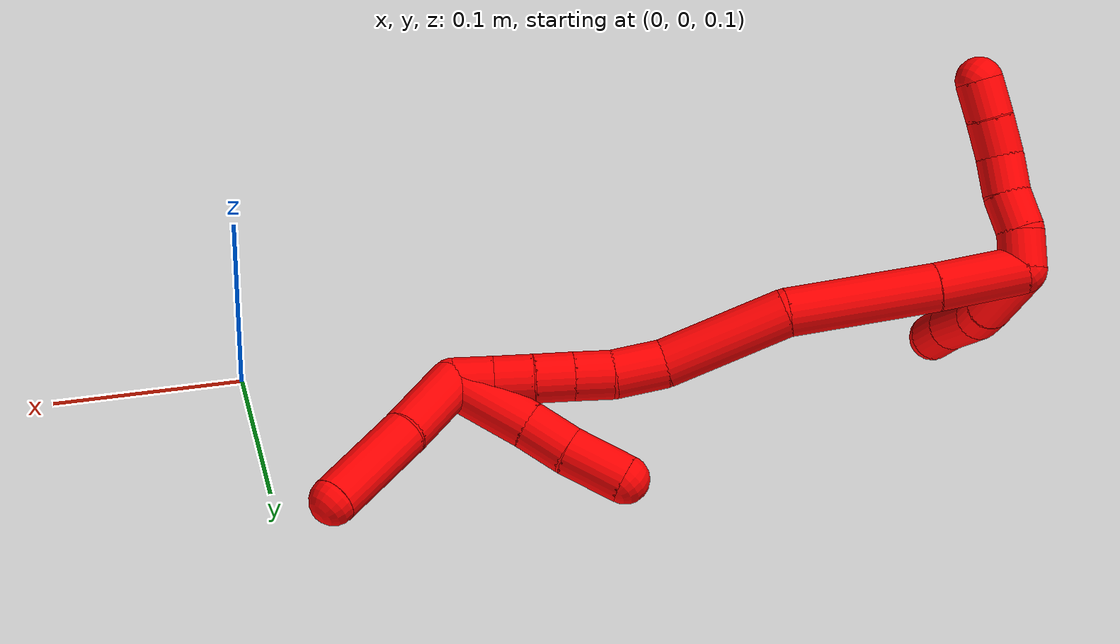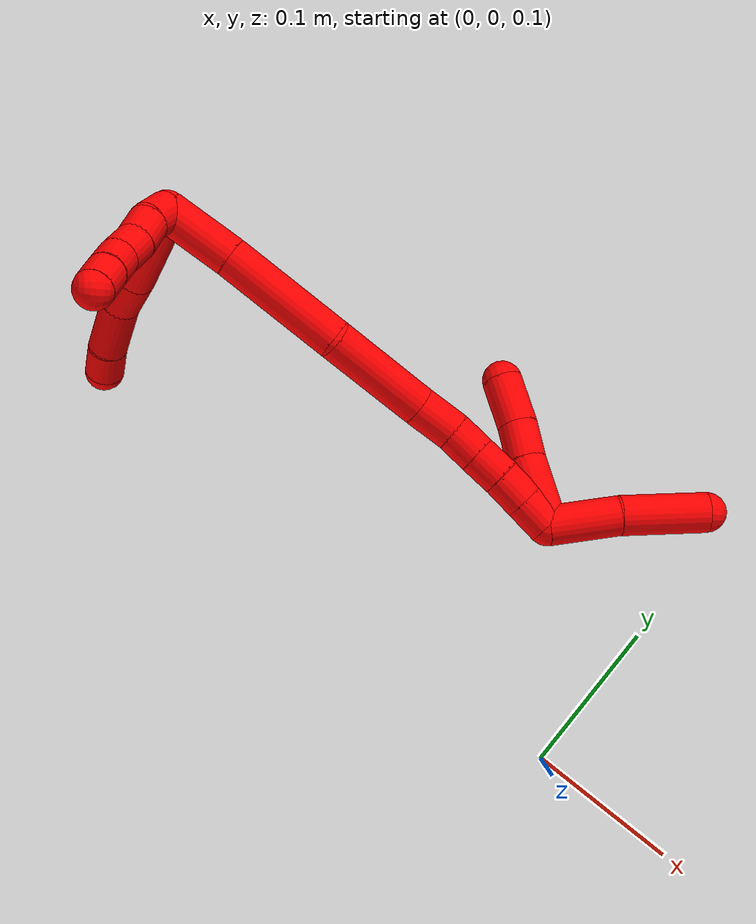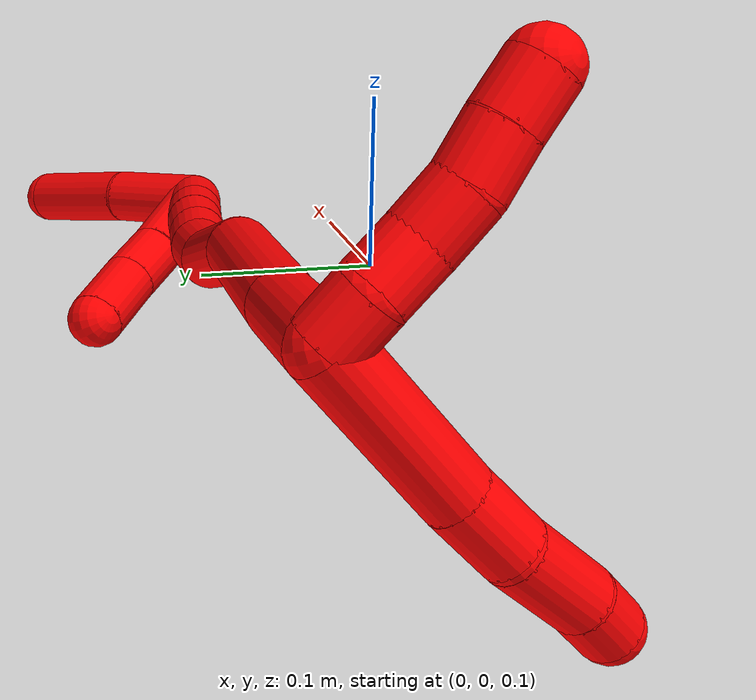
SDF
<sdf version="1.7">
 <world name="default">
  <model name="2">
   <static>0</static>
   <link name="2">
    <collision name="collision-cylinder-e_1_2_8">
     <pose>0.011503 -0.030749 0.002007 1.50562 0.357286 0.335161</pose>
     <geometry><cylinder><radius>0.0125</radius><length>0.065784</length></cylinder></geometry>
     <surface>
      <friction><ode><mu>1.16</mu><mu2>1.16</mu2><slip1>0</slip1><slip2>0</slip2></ode></friction>
      <contact><ode><kp>1e+06</kp><kd>1</kd><max_vel>0</max_vel><min_depth>0.001</min_depth></ode></contact>
     </surface>
    </collision>
    <visual name="visual-cylinder-e_1_2_8">
     <pose>0.011503 -0.030749 0.002007 1.50562 0.357286 0.335161</pose>
     <geometry><cylinder><radius>0.0125</radius><length>0.065784</length></cylinder></geometry>
     <material><ambient>1 0 0 1</ambient></material>
    </visual>
    <collision name="collision-cylinder-e_2_8_9">
     <pose>0.027993 -0.073923 0.005883 1.42148 0.377772 0.326191</pose>
     <geometry><cylinder><radius>0.0125</radius><length>0.027036</length></cylinder></geometry>
     <surface>
      <friction><ode><mu>1.16</mu><mu2>1.16</mu2><slip1>0</slip1><slip2>0</slip2></ode></friction>
      <contact><ode><kp>1e+06</kp><kd>1</kd><max_vel>0</max_vel><min_depth>0.001</min_depth></ode></contact>
     </surface>
    </collision>
    <visual name="visual-cylinder-e_2_8_9">
     <pose>0.027993 -0.073923 0.005883 1.42148 0.377772 0.326191</pose>
     <geometry><cylinder><radius>0.0125</radius><length>0.027036</length></cylinder></geometry>
     <material><ambient>1 0 0 1</ambient></material>
    </visual>
    <collision name="collision-cylinder-e_3_9_10">
     <pose>0.042749 -0.101565 0.00829 1.53547 0.570513 0.551714</pose>
     <geometry><cylinder><radius>0.0125</radius><length>0.036183</length></cylinder></geometry>
     <surface>
      <friction><ode><mu>1.16</mu><mu2>1.16</mu2><slip1>0</slip1><slip2>0</slip2></ode></friction>
      <contact><ode><kp>1e+06</kp><kd>1</kd><max_vel>0</max_vel><min_depth>0.001</min_depth></ode></contact>
     </surface>
    </collision>
    <visual name="visual-cylinder-e_3_9_10">
     <pose>0.042749 -0.101565 0.00829 1.53547 0.570513 0.551714</pose>
     <geometry><cylinder><radius>0.0125</radius><length>0.036183</length></cylinder></geometry>
     <material><ambient>1 0 0 1</ambient></material>
    </visual>
    <collision name="collision-cylinder-e_4_10_6">
     <pose>0.057799 -0.125793 0.007749 1.68992 0.526803 0.590005</pose>
     <geometry><cylinder><radius>0.0125</radius><length>0.020997</length></cylinder></geometry>
     <surface>
      <friction><ode><mu>1.16</mu><mu2>1.16</mu2><slip1>0</slip1><slip2>0</slip2></ode></friction>
      <contact><ode><kp>1e+06</kp><kd>1</kd><max_vel>0</max_vel><min_depth>0.001</min_depth></ode></contact>
     </surface>
    </collision>
    <visual name="visual-cylinder-e_4_10_6">
     <pose>0.057799 -0.125793 0.007749 1.68992 0.526803 0.590005</pose>
     <geometry><cylinder><radius>0.0125</radius><length>0.020997</length></cylinder></geometry>
     <material><ambient>1 0 0 1</ambient></material>
    </visual>
    <collision name="collision-cylinder-e_1_2_11">
     <pose>0.005764 0.004465 0.006843 -0.578126 0.61436 -0.188122</pose>
     <geometry><cylinder><radius>0.0125</radius><length>0.02</length></cylinder></geometry>
     <surface>
      <friction><ode><mu>1.16</mu><mu2>1.16</mu2><slip1>0</slip1><slip2>0</slip2></ode></friction>
      <contact><ode><kp>1e+06</kp><kd>1</kd><max_vel>0</max_vel><min_depth>0.001</min_depth></ode></contact>
     </surface>
    </collision>
    <visual name="visual-cylinder-e_1_2_11">
     <pose>0.005764 0.004465 0.006843 -0.578126 0.61436 -0.188122</pose>
     <geometry><cylinder><radius>0.0125</radius><length>0.02</length></cylinder></geometry>
     <material><ambient>1 0 0 1</ambient></material>
    </visual>
    <collision name="collision-cylinder-e_2_11_12">
     <pose>0.019377 0.012599 0.018681 -0.63351 0.902486 -0.315056</pose>
     <geometry><cylinder><radius>0.0125</radius><length>0.02</length></cylinder></geometry>
     <surface>
      <friction><ode><mu>1.16</mu><mu2>1.16</mu2><slip1>0</slip1><slip2>0</slip2></ode></friction>
      <contact><ode><kp>1e+06</kp><kd>1</kd><max_vel>0</max_vel><min_depth>0.001</min_depth></ode></contact>
     </surface>
    </collision>
    <visual name="visual-cylinder-e_2_11_12">
     <pose>0.019377 0.012599 0.018681 -0.63351 0.902486 -0.315056</pose>
     <geometry><cylinder><radius>0.0125</radius><length>0.02</length></cylinder></geometry>
     <material><ambient>1 0 0 1</ambient></material>
    </visual>
    <collision name="collision-cylinder-e_3_12_13">
     <pose>0.033858 0.020637 0.029751 -0.623547 0.725102 -0.243289</pose>
     <geometry><cylinder><radius>0.0125</radius><length>0.02</length></cylinder></geometry>
     <surface>
      <friction><ode><mu>1.16</mu><mu2>1.16</mu2><slip1>0</slip1><slip2>0</slip2></ode></friction>
      <contact><ode><kp>1e+06</kp><kd>1</kd><max_vel>0</max_vel><min_depth>0.001</min_depth></ode></contact>
     </surface>
    </collision>
    <visual name="visual-cylinder-e_3_12_13">
     <pose>0.033858 0.020637 0.029751 -0.623547 0.725102 -0.243289</pose>
     <geometry><cylinder><radius>0.0125</radius><length>0.02</length></cylinder></geometry>
     <material><ambient>1 0 0 1</ambient></material>
    </visual>
    <collision name="collision-cylinder-e_4_13_14">
     <pose>0.047056 0.030838 0.040612 -0.883553 0.716267 -0.350397</pose>
     <geometry><cylinder><radius>0.0125</radius><length>0.02</length></cylinder></geometry>
     <surface>
      <friction><ode><mu>1.16</mu><mu2>1.16</mu2><slip1>0</slip1><slip2>0</slip2></ode></friction>
      <contact><ode><kp>1e+06</kp><kd>1</kd><max_vel>0</max_vel><min_depth>0.001</min_depth></ode></contact>
     </surface>
    </collision>
    <visual name="visual-cylinder-e_4_13_14">
     <pose>0.047056 0.030838 0.040612 -0.883553 0.716267 -0.350397</pose>
     <geometry><cylinder><radius>0.0125</radius><length>0.02</length></cylinder></geometry>
     <material><ambient>1 0 0 1</ambient></material>
    </visual>
    <collision name="collision-cylinder-e_5_14_5">
     <pose>0.060536 0.042012 0.050259 -0.832551 0.763428 -0.351273</pose>
     <geometry><cylinder><radius>0.0125</radius><length>0.02</length></cylinder></geometry>
     <surface>
      <friction><ode><mu>1.16</mu><mu2>1.16</mu2><slip1>0</slip1><slip2>0</slip2></ode></friction>
      <contact><ode><kp>1e+06</kp><kd>1</kd><max_vel>0</max_vel><min_depth>0.001</min_depth></ode></contact>
     </surface>
    </collision>
    <visual name="visual-cylinder-e_5_14_5">
     <pose>0.060536 0.042012 0.050259 -0.832551 0.763428 -0.351273</pose>
     <geometry><cylinder><radius>0.0125</radius><length>0.02</length></cylinder></geometry>
     <material><ambient>1 0 0 1</ambient></material>
    </visual>
    <collision name="collision-cylinder-e_1_2_15">
     <pose>0.013681 0.002819 -0.018682 -2.99181 0.626745 -2.68652</pose>
     <geometry><cylinder><radius>0.0125</radius><length>0.046654</length></cylinder></geometry>
     <surface>
      <friction><ode><mu>1.16</mu><mu2>1.16</mu2><slip1>0</slip1><slip2>0</slip2></ode></friction>
      <contact><ode><kp>1e+06</kp><kd>1</kd><max_vel>0</max_vel><min_depth>0.001</min_depth></ode></contact>
     </surface>
    </collision>
    <visual name="visual-cylinder-e_1_2_15">
     <pose>0.013681 0.002819 -0.018682 -2.99181 0.626745 -2.68652</pose>
     <geometry><cylinder><radius>0.0125</radius><length>0.046654</length></cylinder></geometry>
     <material><ambient>1 0 0 1</ambient></material>
    </visual>
    <collision name="collision-cylinder-e_2_15_16">
     <pose>0.051795 0.010135 -0.067913 -2.99546 0.669363 -2.72669</pose>
     <geometry><cylinder><radius>0.0125</radius><length>0.07875</length></cylinder></geometry>
     <surface>
      <friction><ode><mu>1.16</mu><mu2>1.16</mu2><slip1>0</slip1><slip2>0</slip2></ode></friction>
      <contact><ode><kp>1e+06</kp><kd>1</kd><max_vel>0</max_vel><min_depth>0.001</min_depth></ode></contact>
     </surface>
    </collision>
    <visual name="visual-cylinder-e_2_15_16">
     <pose>0.051795 0.010135 -0.067913 -2.99546 0.669363 -2.72669</pose>
     <geometry><cylinder><radius>0.0125</radius><length>0.07875</length></cylinder></geometry>
     <material><ambient>1 0 0 1</ambient></material>
    </visual>
    <collision name="collision-cylinder-e_3_16_17">
     <pose>0.093806 0.010178 -0.126529 2.98424 0.553993 2.60059</pose>
     <geometry><cylinder><radius>0.0125</radius><length>0.066832</length></cylinder></geometry>
     <surface>
      <friction><ode><mu>1.16</mu><mu2>1.16</mu2><slip1>0</slip1><slip2>0</slip2></ode></friction>
      <contact><ode><kp>1e+06</kp><kd>1</kd><max_vel>0</max_vel><min_depth>0.001</min_depth></ode></contact>
     </surface>
    </collision>
    <visual name="visual-cylinder-e_3_16_17">
     <pose>0.093806 0.010178 -0.126529 2.98424 0.553993 2.60059</pose>
     <geometry><cylinder><radius>0.0125</radius><length>0.066832</length></cylinder></geometry>
     <material><ambient>1 0 0 1</ambient></material>
    </visual>
    <collision name="collision-cylinder-e_4_17_18">
     <pose>0.119352 0.007025 -0.16538 -3.02161 0.632811 -2.77873</pose>
     <geometry><cylinder><radius>0.0125</radius><length>0.02694</length></cylinder></geometry>
     <surface>
      <friction><ode><mu>1.16</mu><mu2>1.16</mu2><slip1>0</slip1><slip2>0</slip2></ode></friction>
      <contact><ode><kp>1e+06</kp><kd>1</kd><max_vel>0</max_vel><min_depth>0.001</min_depth></ode></contact>
     </surface>
    </collision>
    <visual name="visual-cylinder-e_4_17_18">
     <pose>0.119352 0.007025 -0.16538 -3.02161 0.632811 -2.77873</pose>
     <geometry><cylinder><radius>0.0125</radius><length>0.02694</length></cylinder></geometry>
     <material><ambient>1 0 0 1</ambient></material>
    </visual>
    <collision name="collision-cylinder-e_5_18_19">
     <pose>0.134418 0.009819 -0.183072 -2.92866 0.787605 -2.63809</pose>
     <geometry><cylinder><radius>0.0125</radius><length>0.020036</length></cylinder></geometry>
     <surface>
      <friction><ode><mu>1.16</mu><mu2>1.16</mu2><slip1>0</slip1><slip2>0</slip2></ode></friction>
      <contact><ode><kp>1e+06</kp><kd>1</kd><max_vel>0</max_vel><min_depth>0.001</min_depth></ode></contact>
     </surface>
    </collision>
    <visual name="visual-cylinder-e_5_18_19">
     <pose>0.134418 0.009819 -0.183072 -2.92866 0.787605 -2.63809</pose>
     <geometry><cylinder><radius>0.0125</radius><length>0.020036</length></cylinder></geometry>
     <material><ambient>1 0 0 1</ambient></material>
    </visual>
    <collision name="collision-cylinder-e_6_19_20">
     <pose>0.148503 0.012839 -0.197022 -2.9281 0.770008 -2.62456</pose>
     <geometry><cylinder><radius>0.0125</radius><length>0.02007</length></cylinder></geometry>
     <surface>
      <friction><ode><mu>1.16</mu><mu2>1.16</mu2><slip1>0</slip1><slip2>0</slip2></ode></friction>
      <contact><ode><kp>1e+06</kp><kd>1</kd><max_vel>0</max_vel><min_depth>0.001</min_depth></ode></contact>
     </surface>
    </collision>
    <visual name="visual-cylinder-e_6_19_20">
     <pose>0.148503 0.012839 -0.197022 -2.9281 0.770008 -2.62456</pose>
     <geometry><cylinder><radius>0.0125</radius><length>0.02007</length></cylinder></geometry>
     <material><ambient>1 0 0 1</ambient></material>
    </visual>
    <collision name="collision-cylinder-e_7_20_21">
     <pose>0.162834 0.015359 -0.210885 -2.99704 0.816971 -2.81012</pose>
     <geometry><cylinder><radius>0.0125</radius><length>0.020147</length></cylinder></geometry>
     <surface>
      <friction><ode><mu>1.16</mu><mu2>1.16</mu2><slip1>0</slip1><slip2>0</slip2></ode></friction>
      <contact><ode><kp>1e+06</kp><kd>1</kd><max_vel>0</max_vel><min_depth>0.001</min_depth></ode></contact>
     </surface>
    </collision>
    <visual name="visual-cylinder-e_7_20_21">
     <pose>0.162834 0.015359 -0.210885 -2.99704 0.816971 -2.81012</pose>
     <geometry><cylinder><radius>0.0125</radius><length>0.020147</length></cylinder></geometry>
     <material><ambient>1 0 0 1</ambient></material>
    </visual>
    <collision name="collision-cylinder-e_8_21_1">
     <pose>0.177698 0.017441 -0.22464 -2.98583 0.819953 -2.78626</pose>
     <geometry><cylinder><radius>0.0125</radius><length>0.02057</length></cylinder></geometry>
     <surface>
      <friction><ode><mu>1.16</mu><mu2>1.16</mu2><slip1>0</slip1><slip2>0</slip2></ode></friction>
      <contact><ode><kp>1e+06</kp><kd>1</kd><max_vel>0</max_vel><min_depth>0.001</min_depth></ode></contact>
     </surface>
    </collision>
    <visual name="visual-cylinder-e_8_21_1">
     <pose>0.177698 0.017441 -0.22464 -2.98583 0.819953 -2.78626</pose>
     <geometry><cylinder><radius>0.0125</radius><length>0.02057</length></cylinder></geometry>
     <material><ambient>1 0 0 1</ambient></material>
    </visual>
    <collision name="collision-cylinder-e_1_1_22">
     <pose>0.182488 0.025205 -0.252747 -2.8362 -0.122321 0.757421</pose>
     <geometry><cylinder><radius>0.0125</radius><length>0.044738</length></cylinder></geometry>
     <surface>
      <friction><ode><mu>1.16</mu><mu2>1.16</mu2><slip1>0</slip1><slip2>0</slip2></ode></friction>
      <contact><ode><kp>1e+06</kp><kd>1</kd><max_vel>0</max_vel><min_depth>0.001</min_depth></ode></contact>
     </surface>
    </collision>
    <visual name="visual-cylinder-e_1_1_22">
     <pose>0.182488 0.025205 -0.252747 -2.8362 -0.122321 0.757421</pose>
     <geometry><cylinder><radius>0.0125</radius><length>0.044738</length></cylinder></geometry>
     <material><ambient>1 0 0 1</ambient></material>
    </visual>
    <collision name="collision-cylinder-e_2_22_4">
     <pose>0.178776 0.037753 -0.300903 -2.92725 -0.035574 0.327733</pose>
     <geometry><cylinder><radius>0.0125</radius><length>0.055262</length></cylinder></geometry>
     <surface>
      <friction><ode><mu>1.16</mu><mu2>1.16</mu2><slip1>0</slip1><slip2>0</slip2></ode></friction>
      <contact><ode><kp>1e+06</kp><kd>1</kd><max_vel>0</max_vel><min_depth>0.001</min_depth></ode></contact>
     </surface>
    </collision>
    <visual name="visual-cylinder-e_2_22_4">
     <pose>0.178776 0.037753 -0.300903 -2.92725 -0.035574 0.327733</pose>
     <geometry><cylinder><radius>0.0125</radius><length>0.055262</length></cylinder></geometry>
     <material><ambient>1 0 0 1</ambient></material>
    </visual>
    <collision name="collision-cylinder-e_1_1_23">
     <pose>0.1642 0.013329 -0.227832 0.947257 -1.27497 -0.725606</pose>
     <geometry><cylinder><radius>0.0125</radius><length>0.043943</length></cylinder></geometry>
     <surface>
      <friction><ode><mu>1.16</mu><mu2>1.16</mu2><slip1>0</slip1><slip2>0</slip2></ode></friction>
      <contact><ode><kp>1e+06</kp><kd>1</kd><max_vel>0</max_vel><min_depth>0.001</min_depth></ode></contact>
     </surface>
    </collision>
    <visual name="visual-cylinder-e_1_1_23">
     <pose>0.1642 0.013329 -0.227832 0.947257 -1.27497 -0.725606</pose>
     <geometry><cylinder><radius>0.0125</radius><length>0.043943</length></cylinder></geometry>
     <material><ambient>1 0 0 1</ambient></material>
    </visual>
    <collision name="collision-cylinder-e_2_23_24">
     <pose>0.131456 0.00562 -0.222868 1.11699 -1.33706 -0.916951</pose>
     <geometry><cylinder><radius>0.0125</radius><length>0.02411</length></cylinder></geometry>
     <surface>
      <friction><ode><mu>1.16</mu><mu2>1.16</mu2><slip1>0</slip1><slip2>0</slip2></ode></friction>
      <contact><ode><kp>1e+06</kp><kd>1</kd><max_vel>0</max_vel><min_depth>0.001</min_depth></ode></contact>
     </surface>
    </collision>
    <visual name="visual-cylinder-e_2_23_24">
     <pose>0.131456 0.00562 -0.222868 1.11699 -1.33706 -0.916951</pose>
     <geometry><cylinder><radius>0.0125</radius><length>0.02411</length></cylinder></geometry>
     <material><ambient>1 0 0 1</ambient></material>
    </visual>
    <collision name="collision-cylinder-e_3_24_3">
     <pose>0.104423 -0.000144 -0.218434 0.792196 -1.28056 -0.604043</pose>
     <geometry><cylinder><radius>0.0125</radius><length>0.031947</length></cylinder></geometry>
     <surface>
      <friction><ode><mu>1.16</mu><mu2>1.16</mu2><slip1>0</slip1><slip2>0</slip2></ode></friction>
      <contact><ode><kp>1e+06</kp><kd>1</kd><max_vel>0</max_vel><min_depth>0.001</min_depth></ode></contact>
     </surface>
    </collision>
    <visual name="visual-cylinder-e_3_24_3">
     <pose>0.104423 -0.000144 -0.218434 0.792196 -1.28056 -0.604043</pose>
     <geometry><cylinder><radius>0.0125</radius><length>0.031947</length></cylinder></geometry>
     <material><ambient>1 0 0 1</ambient></material>
    </visual>
    <collision name="collision-sphere-3">
     <pose>0.089118 -0.003398 -0.215223 0 -0 0</pose>
     <geometry><sphere><radius>0.0125</radius></sphere></geometry>
     <surface>
      <friction><ode><mu>1.16</mu><mu2>1.16</mu2><slip1>0</slip1><slip2>0</slip2></ode></friction>
      <contact><ode><kp>1e+06</kp><kd>1</kd><max_vel>0</max_vel><min_depth>0.001</min_depth></ode></contact>
     </surface>
    </collision>
    <visual name="visual-sphere-3">
     <pose>0.089118 -0.003398 -0.215223 0 -0 0</pose>
     <geometry><sphere><radius>0.0125</radius></sphere></geometry>
     <material><ambient>1 0 0 1</ambient></material>
    </visual>
    <collision name="collision-sphere-24">
     <pose>0.119729 0.00311 -0.221644 0 -0 0</pose>
     <geometry><sphere><radius>0.0125</radius></sphere></geometry>
     <surface>
      <friction><ode><mu>1.16</mu><mu2>1.16</mu2><slip1>0</slip1><slip2>0</slip2></ode></friction>
      <contact><ode><kp>1e+06</kp><kd>1</kd><max_vel>0</max_vel><min_depth>0.001</min_depth></ode></contact>
     </surface>
    </collision>
    <visual name="visual-sphere-24">
     <pose>0.119729 0.00311 -0.221644 0 -0 0</pose>
     <geometry><sphere><radius>0.0125</radius></sphere></geometry>
     <material><ambient>1 0 0 1</ambient></material>
    </visual>
    <collision name="collision-sphere-23">
     <pose>0.143183 0.008129 -0.224092 0 -0 0</pose>
     <geometry><sphere><radius>0.0125</radius></sphere></geometry>
     <surface>
      <friction><ode><mu>1.16</mu><mu2>1.16</mu2><slip1>0</slip1><slip2>0</slip2></ode></friction>
      <contact><ode><kp>1e+06</kp><kd>1</kd><max_vel>0</max_vel><min_depth>0.001</min_depth></ode></contact>
     </surface>
    </collision>
    <visual name="visual-sphere-23">
     <pose>0.143183 0.008129 -0.224092 0 -0 0</pose>
     <geometry><sphere><radius>0.0125</radius></sphere></geometry>
     <material><ambient>1 0 0 1</ambient></material>
    </visual>
    <collision name="collision-sphere-4">
     <pose>0.177793 0.043627 -0.327885 0 -0 0</pose>
     <geometry><sphere><radius>0.0125</radius></sphere></geometry>
     <surface>
      <friction><ode><mu>1.16</mu><mu2>1.16</mu2><slip1>0</slip1><slip2>0</slip2></ode></friction>
      <contact><ode><kp>1e+06</kp><kd>1</kd><max_vel>0</max_vel><min_depth>0.001</min_depth></ode></contact>
     </surface>
    </collision>
    <visual name="visual-sphere-4">
     <pose>0.177793 0.043627 -0.327885 0 -0 0</pose>
     <geometry><sphere><radius>0.0125</radius></sphere></geometry>
     <material><ambient>1 0 0 1</ambient></material>
    </visual>
    <collision name="collision-sphere-22">
     <pose>0.179759 0.03188 -0.273921 0 -0 0</pose>
     <geometry><sphere><radius>0.0125</radius></sphere></geometry>
     <surface>
      <friction><ode><mu>1.16</mu><mu2>1.16</mu2><slip1>0</slip1><slip2>0</slip2></ode></friction>
      <contact><ode><kp>1e+06</kp><kd>1</kd><max_vel>0</max_vel><min_depth>0.001</min_depth></ode></contact>
     </surface>
    </collision>
    <visual name="visual-sphere-22">
     <pose>0.179759 0.03188 -0.273921 0 -0 0</pose>
     <geometry><sphere><radius>0.0125</radius></sphere></geometry>
     <material><ambient>1 0 0 1</ambient></material>
    </visual>
    <collision name="collision-sphere-1">
     <pose>0.185217 0.018529 -0.231572 0 -0 0</pose>
     <geometry><sphere><radius>0.0125</radius></sphere></geometry>
     <surface>
      <friction><ode><mu>1.16</mu><mu2>1.16</mu2><slip1>0</slip1><slip2>0</slip2></ode></friction>
      <contact><ode><kp>1e+06</kp><kd>1</kd><max_vel>0</max_vel><min_depth>0.001</min_depth></ode></contact>
     </surface>
    </collision>
    <visual name="visual-sphere-1">
     <pose>0.185217 0.018529 -0.231572 0 -0 0</pose>
     <geometry><sphere><radius>0.0125</radius></sphere></geometry>
     <material><ambient>1 0 0 1</ambient></material>
    </visual>
    <collision name="collision-sphere-21">
     <pose>0.170178 0.016352 -0.217708 0 -0 0</pose>
     <geometry><sphere><radius>0.0125</radius></sphere></geometry>
     <surface>
      <friction><ode><mu>1.16</mu><mu2>1.16</mu2><slip1>0</slip1><slip2>0</slip2></ode></friction>
      <contact><ode><kp>1e+06</kp><kd>1</kd><max_vel>0</max_vel><min_depth>0.001</min_depth></ode></contact>
     </surface>
    </collision>
    <visual name="visual-sphere-21">
     <pose>0.170178 0.016352 -0.217708 0 -0 0</pose>
     <geometry><sphere><radius>0.0125</radius></sphere></geometry>
     <material><ambient>1 0 0 1</ambient></material>
    </visual>
    <collision name="collision-sphere-11">
     <pose>0.011529 0.008931 0.013687 0 -0 0</pose>
     <geometry><sphere><radius>0.0125</radius></sphere></geometry>
     <surface>
      <friction><ode><mu>1.16</mu><mu2>1.16</mu2><slip1>0</slip1><slip2>0</slip2></ode></friction>
      <contact><ode><kp>1e+06</kp><kd>1</kd><max_vel>0</max_vel><min_depth>0.001</min_depth></ode></contact>
     </surface>
    </collision>
    <visual name="visual-sphere-11">
     <pose>0.011529 0.008931 0.013687 0 -0 0</pose>
     <geometry><sphere><radius>0.0125</radius></sphere></geometry>
     <material><ambient>1 0 0 1</ambient></material>
    </visual>
    <collision name="collision-sphere-6">
     <pose>0.063077 -0.134804 0.006671 0 -0 0</pose>
     <geometry><sphere><radius>0.0125</radius></sphere></geometry>
     <surface>
      <friction><ode><mu>1.16</mu><mu2>1.16</mu2><slip1>0</slip1><slip2>0</slip2></ode></friction>
      <contact><ode><kp>1e+06</kp><kd>1</kd><max_vel>0</max_vel><min_depth>0.001</min_depth></ode></contact>
     </surface>
    </collision>
    <visual name="visual-sphere-6">
     <pose>0.063077 -0.134804 0.006671 0 -0 0</pose>
     <geometry><sphere><radius>0.0125</radius></sphere></geometry>
     <material><ambient>1 0 0 1</ambient></material>
    </visual>
    <collision name="collision-sphere-10">
     <pose>0.05252 -0.116782 0.008828 0 -0 0</pose>
     <geometry><sphere><radius>0.0125</radius></sphere></geometry>
     <surface>
      <friction><ode><mu>1.16</mu><mu2>1.16</mu2><slip1>0</slip1><slip2>0</slip2></ode></friction>
      <contact><ode><kp>1e+06</kp><kd>1</kd><max_vel>0</max_vel><min_depth>0.001</min_depth></ode></contact>
     </surface>
    </collision>
    <visual name="visual-sphere-10">
     <pose>0.05252 -0.116782 0.008828 0 -0 0</pose>
     <geometry><sphere><radius>0.0125</radius></sphere></geometry>
     <material><ambient>1 0 0 1</ambient></material>
    </visual>
    <collision name="collision-sphere-9">
     <pose>0.032979 -0.086348 0.007752 0 -0 0</pose>
     <geometry><sphere><radius>0.0125</radius></sphere></geometry>
     <surface>
      <friction><ode><mu>1.16</mu><mu2>1.16</mu2><slip1>0</slip1><slip2>0</slip2></ode></friction>
      <contact><ode><kp>1e+06</kp><kd>1</kd><max_vel>0</max_vel><min_depth>0.001</min_depth></ode></contact>
     </surface>
    </collision>
    <visual name="visual-sphere-9">
     <pose>0.032979 -0.086348 0.007752 0 -0 0</pose>
     <geometry><sphere><radius>0.0125</radius></sphere></geometry>
     <material><ambient>1 0 0 1</ambient></material>
    </visual>
    <collision name="collision-sphere-2">
     <geometry><sphere><radius>0.0125</radius></sphere></geometry>
     <surface>
      <friction><ode><mu>1.16</mu><mu2>1.16</mu2><slip1>0</slip1><slip2>0</slip2></ode></friction>
      <contact><ode><kp>1e+06</kp><kd>1</kd><max_vel>0</max_vel><min_depth>0.001</min_depth></ode></contact>
     </surface>
    </collision>
    <visual name="visual-sphere-2">
     <geometry><sphere><radius>0.0125</radius></sphere></geometry>
     <material><ambient>1 0 0 1</ambient></material>
    </visual>
    <collision name="collision-sphere-19">
     <pose>0.141517 0.011313 -0.189981 0 -0 0</pose>
     <geometry><sphere><radius>0.0125</radius></sphere></geometry>
     <surface>
      <friction><ode><mu>1.16</mu><mu2>1.16</mu2><slip1>0</slip1><slip2>0</slip2></ode></friction>
      <contact><ode><kp>1e+06</kp><kd>1</kd><max_vel>0</max_vel><min_depth>0.001</min_depth></ode></contact>
     </surface>
    </collision>
    <visual name="visual-sphere-19">
     <pose>0.141517 0.011313 -0.189981 0 -0 0</pose>
     <geometry><sphere><radius>0.0125</radius></sphere></geometry>
     <material><ambient>1 0 0 1</ambient></material>
    </visual>
    <collision name="collision-sphere-8">
     <pose>0.023007 -0.061498 0.004014 0 -0 0</pose>
     <geometry><sphere><radius>0.0125</radius></sphere></geometry>
     <surface>
      <friction><ode><mu>1.16</mu><mu2>1.16</mu2><slip1>0</slip1><slip2>0</slip2></ode></friction>
      <contact><ode><kp>1e+06</kp><kd>1</kd><max_vel>0</max_vel><min_depth>0.001</min_depth></ode></contact>
     </surface>
    </collision>
    <visual name="visual-sphere-8">
     <pose>0.023007 -0.061498 0.004014 0 -0 0</pose>
     <geometry><sphere><radius>0.0125</radius></sphere></geometry>
     <material><ambient>1 0 0 1</ambient></material>
    </visual>
    <collision name="collision-sphere-12">
     <pose>0.027226 0.016267 0.023675 0 -0 0</pose>
     <geometry><sphere><radius>0.0125</radius></sphere></geometry>
     <surface>
      <friction><ode><mu>1.16</mu><mu2>1.16</mu2><slip1>0</slip1><slip2>0</slip2></ode></friction>
      <contact><ode><kp>1e+06</kp><kd>1</kd><max_vel>0</max_vel><min_depth>0.001</min_depth></ode></contact>
     </surface>
    </collision>
    <visual name="visual-sphere-12">
     <pose>0.027226 0.016267 0.023675 0 -0 0</pose>
     <geometry><sphere><radius>0.0125</radius></sphere></geometry>
     <material><ambient>1 0 0 1</ambient></material>
    </visual>
    <collision name="collision-sphere-13">
     <pose>0.04049 0.025008 0.035827 0 -0 0</pose>
     <geometry><sphere><radius>0.0125</radius></sphere></geometry>
     <surface>
      <friction><ode><mu>1.16</mu><mu2>1.16</mu2><slip1>0</slip1><slip2>0</slip2></ode></friction>
      <contact><ode><kp>1e+06</kp><kd>1</kd><max_vel>0</max_vel><min_depth>0.001</min_depth></ode></contact>
     </surface>
    </collision>
    <visual name="visual-sphere-13">
     <pose>0.04049 0.025008 0.035827 0 -0 0</pose>
     <geometry><sphere><radius>0.0125</radius></sphere></geometry>
     <material><ambient>1 0 0 1</ambient></material>
    </visual>
    <collision name="collision-sphere-14">
     <pose>0.053622 0.036668 0.045397 0 -0 0</pose>
     <geometry><sphere><radius>0.0125</radius></sphere></geometry>
     <surface>
      <friction><ode><mu>1.16</mu><mu2>1.16</mu2><slip1>0</slip1><slip2>0</slip2></ode></friction>
      <contact><ode><kp>1e+06</kp><kd>1</kd><max_vel>0</max_vel><min_depth>0.001</min_depth></ode></contact>
     </surface>
    </collision>
    <visual name="visual-sphere-14">
     <pose>0.053622 0.036668 0.045397 0 -0 0</pose>
     <geometry><sphere><radius>0.0125</radius></sphere></geometry>
     <material><ambient>1 0 0 1</ambient></material>
    </visual>
    <collision name="collision-sphere-5">
     <pose>0.06745 0.047356 0.055122 0 -0 0</pose>
     <geometry><sphere><radius>0.0125</radius></sphere></geometry>
     <surface>
      <friction><ode><mu>1.16</mu><mu2>1.16</mu2><slip1>0</slip1><slip2>0</slip2></ode></friction>
      <contact><ode><kp>1e+06</kp><kd>1</kd><max_vel>0</max_vel><min_depth>0.001</min_depth></ode></contact>
     </surface>
    </collision>
    <visual name="visual-sphere-5">
     <pose>0.06745 0.047356 0.055122 0 -0 0</pose>
     <geometry><sphere><radius>0.0125</radius></sphere></geometry>
     <material><ambient>1 0 0 1</ambient></material>
    </visual>
    <collision name="collision-sphere-15">
     <pose>0.027363 0.005639 -0.037364 0 -0 0</pose>
     <geometry><sphere><radius>0.0125</radius></sphere></geometry>
     <surface>
      <friction><ode><mu>1.16</mu><mu2>1.16</mu2><slip1>0</slip1><slip2>0</slip2></ode></friction>
      <contact><ode><kp>1e+06</kp><kd>1</kd><max_vel>0</max_vel><min_depth>0.001</min_depth></ode></contact>
     </surface>
    </collision>
    <visual name="visual-sphere-15">
     <pose>0.027363 0.005639 -0.037364 0 -0 0</pose>
     <geometry><sphere><radius>0.0125</radius></sphere></geometry>
     <material><ambient>1 0 0 1</ambient></material>
    </visual>
    <collision name="collision-sphere-16">
     <pose>0.076226 0.014632 -0.098463 0 -0 0</pose>
     <geometry><sphere><radius>0.0125</radius></sphere></geometry>
     <surface>
      <friction><ode><mu>1.16</mu><mu2>1.16</mu2><slip1>0</slip1><slip2>0</slip2></ode></friction>
      <contact><ode><kp>1e+06</kp><kd>1</kd><max_vel>0</max_vel><min_depth>0.001</min_depth></ode></contact>
     </surface>
    </collision>
    <visual name="visual-sphere-16">
     <pose>0.076226 0.014632 -0.098463 0 -0 0</pose>
     <geometry><sphere><radius>0.0125</radius></sphere></geometry>
     <material><ambient>1 0 0 1</ambient></material>
    </visual>
    <collision name="collision-sphere-17">
     <pose>0.111386 0.005725 -0.154596 0 -0 0</pose>
     <geometry><sphere><radius>0.0125</radius></sphere></geometry>
     <surface>
      <friction><ode><mu>1.16</mu><mu2>1.16</mu2><slip1>0</slip1><slip2>0</slip2></ode></friction>
      <contact><ode><kp>1e+06</kp><kd>1</kd><max_vel>0</max_vel><min_depth>0.001</min_depth></ode></contact>
     </surface>
    </collision>
    <visual name="visual-sphere-17">
     <pose>0.111386 0.005725 -0.154596 0 -0 0</pose>
     <geometry><sphere><radius>0.0125</radius></sphere></geometry>
     <material><ambient>1 0 0 1</ambient></material>
    </visual>
    <collision name="collision-sphere-18">
     <pose>0.127318 0.008326 -0.176164 0 -0 0</pose>
     <geometry><sphere><radius>0.0125</radius></sphere></geometry>
     <surface>
      <friction><ode><mu>1.16</mu><mu2>1.16</mu2><slip1>0</slip1><slip2>0</slip2></ode></friction>
      <contact><ode><kp>1e+06</kp><kd>1</kd><max_vel>0</max_vel><min_depth>0.001</min_depth></ode></contact>
     </surface>
    </collision>
    <visual name="visual-sphere-18">
     <pose>0.127318 0.008326 -0.176164 0 -0 0</pose>
     <geometry><sphere><radius>0.0125</radius></sphere></geometry>
     <material><ambient>1 0 0 1</ambient></material>
    </visual>
    <collision name="collision-sphere-20">
     <pose>0.155489 0.014366 -0.204062 0 -0 0</pose>
     <geometry><sphere><radius>0.0125</radius></sphere></geometry>
     <surface>
      <friction><ode><mu>1.16</mu><mu2>1.16</mu2><slip1>0</slip1><slip2>0</slip2></ode></friction>
      <contact><ode><kp>1e+06</kp><kd>1</kd><max_vel>0</max_vel><min_depth>0.001</min_depth></ode></contact>
     </surface>
    </collision>
    <visual name="visual-sphere-20">
     <pose>0.155489 0.014366 -0.204062 0 -0 0</pose>
     <geometry><sphere><radius>0.0125</radius></sphere></geometry>
     <material><ambient>1 0 0 1</ambient></material>
    </visual>
    <inertial>
     <pose>0.088242 -0.001699 -0.109661 0 -0 0</pose>
     <mass>0.75</mass>
     <inertia><ixx>2.4e-05</ixx><ixy>0</ixy><ixz>0</ixz><iyy>9.6e-05</iyy><iyz>0</iyz><izz>-5.3e-05</izz></inertia>
    </inertial>
   </link>
   <pose>-0.387972 0.121327 0.19958 1.20055 -0.185254 -0.870191</pose>
  </model>
 </world>
</sdf>
